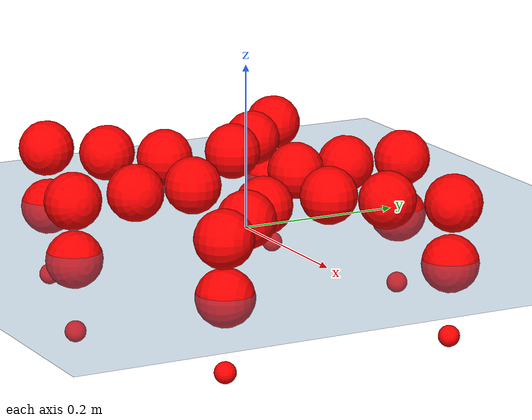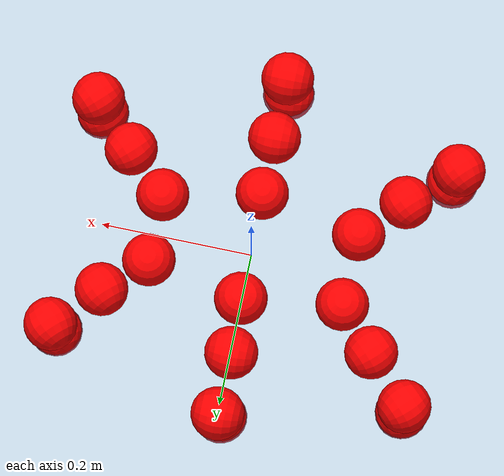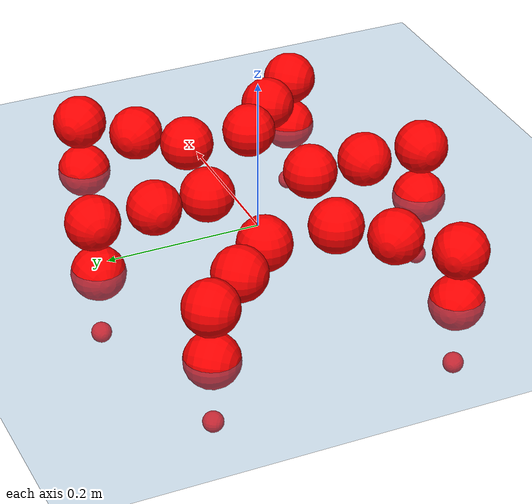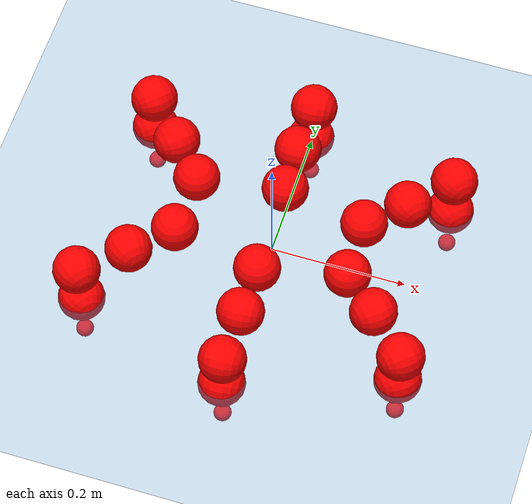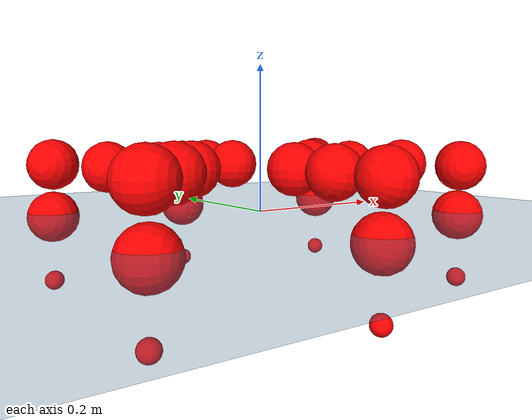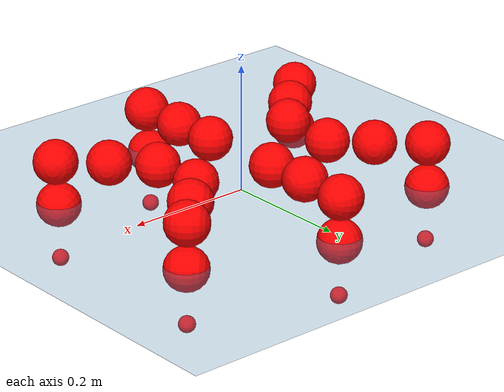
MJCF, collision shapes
<mujoco model="Golem">
  <compiler angle="radian" assetdir="assets" balanceinertia="true" inertiafromgeom="false"/>

  <option timestep="0.005" density="1.2" viscosity="2e-05"/>

  <size nkey="1"/>

  <visual>
    <quality shadowsize="8192"/>
    <map shadowclip="0.5"/>
  </visual>

  <default>
    <default class="/">
      <joint armature="0.01" damping="0.01" frictionloss="0.01"/>
      <geom contype="0" conaffinity="0" group="1" solref="-1000 -80"/>
      <site size="0.01 0.005 0.005" group="5"/>
      <general forcelimited="true" biastype="affine" gainprm="25" biasprm="0 -25 -0.5"/>
      <default class="visual">
        <geom type="mesh" group="2"/>
      </default>
      <default class="collision">
        <geom group="3"/>
      </default>
      <default class="foot">
        <geom size="0.01 0 0" condim="6" group="4" priority="1" solimp="0.015 1 0.01"/>
      </default>
      <default class="reward_collision_sphere">
        <geom group="5" rgba="1 0 0 1"/>
      </default>
    </default>
  </default>

  <asset>
    <texture type="skybox" colorspace="auto" name="//unnamed_texture_0" builtin="gradient" rgb1="0.95 0.95 0.95" rgb2="0.95 0.95 0.95" width="100" height="600"/>
    <texture type="2d" colorspace="auto" name="texplane" builtin="checker" rgb1="0.345 0.575 0.748" rgb2="0.345 0.575 0.748" markrgb="1 1 1" width="512" height="512"/>
    <material name="MatPlane" class="/" texture="texplane" texuniform="true" texrepeat="2 2" specular="0.9"/>
    <mesh name="body" class="/" file="body.stl" scale="0.001 0.001 0.001"/>
    <mesh name="coxa" class="/" file="coxa.stl" scale="0.001 0.001 0.001"/>
    <mesh name="femur" class="/" file="femur.stl" scale="0.001 0.001 0.001"/>
    <mesh name="tibia" class="/" file="tibia.stl" scale="0.001 0.001 0.001"/>
    <mesh name="tarsus" class="/" file="tarsus.stl" scale="0.001 0.001 0.001"/>
  </asset>

  <worldbody>
    <geom name="floor" class="/" size="100 100 0.125" type="plane" group="0" material="MatPlane"/>
    <light name="toplight_shadow" class="/" pos="0 0 5" dir="0.0990148 0.0990148 -0.990148" type="directional" ambient="0.04 0.04 0.04" diffuse="0.55 0.55 0.55" specular="0.12 0.12 0.12"/>
    <light name="toplight_fill" class="/" pos="0 0 5" dir="0.0990148 0.0990148 -0.990148" type="directional" castshadow="false" ambient="0.04 0.04 0.04" diffuse="0.3 0.3 0.3" specular="0.08 0.08 0.08"/>
    <body name="trunk" pos="-0.000897111 -0.000171061 -0.00259678" quat="1 -0.000130785 0.000765747 -0.000373696">
      <inertial pos="0.000351683 0.00240427 -0.00497947" quat="0.999978 -0.00504186 0.0032289 0.00270522" mass="2.4033" diaginertia="0.0037785 0.00216708 0.0116919"/>
      <joint name="//unnamed_joint_0" type="free"/>
      <geom name="//unnamed_geom_1" class="/" pos="0 0 0.0655991" quat="1 0 0 0" type="mesh" rgba="0.9 0.9 0.9 1" mesh="body"/>
      <site name="imu" class="/" pos="0.0984958 0.000235979 0.116441" size="0.00859459"/>
      <camera name="track" class="/" pos="0 -1.47127 0" quat="0.707107 0.707107 0 0" mode="trackcom"/>
      <camera name="ego_camera" class="/" pos="0.106308 0 0.102499" quat="-0.5 -0.5 0.5 0.5"/>
      <body name="coxa_RR" pos="-0.147745 -0.0611382 0.0661328" quat="0.382921 -0.000300746 0.000929789 -0.92378">
        <inertial pos="-0.00244087 -0.00232506 -0.000734663" quat="0.999904 -0.00774277 -0.0103706 0.00502643" mass="0.12879" diaginertia="0.00363221 0.00212286 0.0109728"/>
        <joint name="coxa_joint_RR" class="/" pos="0 0 0" axis="0.00870054 0.000794068 -0.999962" range="-3.1734 3.12109" armature="0.00847547" damping="0.0166" frictionloss="0.00978598"/>
        <geom name="//unnamed_geom_2" class="/" type="mesh" rgba="0.2 0.2 0.2 1" mesh="coxa"/>
        <geom name="//unnamed_geom_3" class="reward_collision_sphere" size="0.0343784" pos="-0.0245326 0 0"/>
        <body name="femur_RR" pos="0.049741 0.00189956 0.000406812" quat="0.500132 -0.500267 0.499794 0.499808">
          <inertial pos="0.000889275 -0.00133079 0.00259179" quat="1 -0.000273737 0.000510314 9.03313e-05" mass="0.126651" diaginertia="0.00365085 0.00214207 0.0109182"/>
          <joint name="femur_joint_RR" class="/" pos="0 0 0" axis="0.00426073 -0.0126614 -0.999911" range="-3.13639 3.12914" armature="0.00786911" damping="0" frictionloss="0.00843562"/>
          <geom name="//unnamed_geom_4" class="/" type="mesh" rgba="0.9 0.9 0.9 1" mesh="femur"/>
          <geom name="//unnamed_geom_5" class="reward_collision_sphere" size="0.0343784"/>
          <body name="tibia_RR" pos="0.000642071 -0.0805311 -0.00207373" quat="-1.82034e-05 1 1.99855e-05 -5.89031e-07">
            <inertial pos="-0.00171436 0.00277662 -0.00261252" quat="0.999905 -0.0130332 -0.00320301 0.00313401" mass="0.125255" diaginertia="0.0034456 0.00210967 0.0109334"/>
            <joint name="tibia_joint_RR" class="/" pos="0 0 0" axis="-0.0046311 0.00070749 0.999989" range="-3.14178 3.08487" armature="0.00851566" damping="0.0137868" frictionloss="0.00813265"/>
            <geom name="//unnamed_geom_6" class="/" type="mesh" rgba="0.2 0.2 0.2 1" mesh="tibia"/>
            <geom name="//unnamed_geom_7" class="reward_collision_sphere" size="0.0343784"/>
            <body name="tarsus_RR" pos="0.0739394 -0.00246175 -0.00175398" quat="0.999999 0.000650551 -0.00094057 0.000743593">
              <inertial pos="0.0498217 -0.0021025 0.0011939" quat="0.499763 0.497343 0.500786 0.502097" mass="0.126369" diaginertia="0.00366833 0.00229406 0.0116613"/>
              <joint name="tarsus_joint_RR" class="/" pos="0 0 0" axis="2.74294e-06 0.000634601 1" range="-3.14467 3.15899" armature="0.0085769" damping="0" frictionloss="0.00901892"/>
              <geom name="//unnamed_geom_8" class="/" type="mesh" rgba="0.9 0.9 0.9 1" mesh="tarsus"/>
              <geom name="foot_1" class="foot" size="0.00882939" pos="0.0915885 0 0" quat="0 -0.707107 0 0.707107"/>
              <geom name="//unnamed_geom_10" class="reward_collision_sphere" size="0.0343784"/>
              <geom name="//unnamed_geom_11" class="reward_collision_sphere" size="0.0128919" pos="0.0879087 0 0"/>
              <site name="foot_1" class="foot" pos="0.0915885 0 0" quat="0 -0.707107 0 0.707107" size="0.00859459"/>
            </body>
          </body>
        </body>
      </body>
      <body name="coxa_RM" pos="0.00181027 -0.0960247 0.0636935" quat="0.707474 0.000676723 0.000298989 -0.706739">
        <inertial pos="0.000133766 -0.0023535 -0.00186146" quat="1 -8.69831e-05 2.61956e-05 -0.000935337" mass="0.121798" diaginertia="0.00340862 0.00200875 0.0110702"/>
        <joint name="coxa_joint_RM" class="/" pos="0 0 0" axis="-0.000471989 -0.0019239 -0.999998" stiffness="0.00568631" range="-3.14354 3.15937" armature="0.00795214" damping="0.0179188" frictionloss="0.009652"/>
        <geom name="//unnamed_geom_12" class="/" type="mesh" rgba="0.2 0.2 0.2 1" mesh="coxa"/>
        <geom name="//unnamed_geom_13" class="reward_collision_sphere" size="0.0343784" pos="-0.0245326 0 0"/>
        <body name="femur_RM" pos="0.0508373 -0.000303004 -0.000146118" quat="0.499679 -0.499511 0.500659 0.500151">
          <inertial pos="0.000540806 -0.00254947 -4.82805e-05" quat="0.999922 -0.00431686 -0.001243 -0.0116508" mass="0.127445" diaginertia="0.0037894 0.00211582 0.0113797"/>
          <joint name="femur_joint_RM" class="/" pos="0 0 0" axis="0.00237096 0.00297028 -0.999993" range="-3.19602 3.19525" armature="0.00963053" damping="0.0267216" frictionloss="0.00869672"/>
          <geom name="//unnamed_geom_14" class="/" type="mesh" rgba="0.9 0.9 0.9 1" mesh="femur"/>
          <geom name="//unnamed_geom_15" class="reward_collision_sphere" size="0.0343784"/>
          <body name="tibia_RM" pos="0.000135366 -0.0805147 -0.000506657" quat="-0.000161365 1 -5.14152e-05 -3.50235e-05">
            <inertial pos="-0.000574761 -0.000327723 -0.00260762" quat="0.999902 0.00629588 0.00886975 0.00884306" mass="0.118431" diaginertia="0.00357169 0.00207546 0.0112845"/>
            <joint name="tibia_joint_RM" class="/" pos="0 0 0" axis="-0.00357148 -0.0013628 0.999993" stiffness="0.00890908" range="-3.19615 3.0835" armature="0.00732167" damping="0" frictionloss="0.00831419"/>
            <geom name="//unnamed_geom_16" class="/" type="mesh" rgba="0.2 0.2 0.2 1" mesh="tibia"/>
            <geom name="//unnamed_geom_17" class="reward_collision_sphere" size="0.0343784"/>
            <body name="tarsus_RM" pos="0.0715563 -0.00196922 0.00277609" quat="1 0.000662536 6.18649e-05 0.000302378">
              <inertial pos="0.0476997 0.000519445 -0.00113429" quat="0.499418 0.50439 0.506983 0.489021" mass="0.126813" diaginertia="0.00367993 0.00214973 0.0113707"/>
              <joint name="tarsus_joint_RM" class="/" pos="0 0 0" axis="0.00294182 -0.00378372 0.999989" range="-3.15591 3.1768" armature="0.00865452" damping="0.000196224" frictionloss="0.00894608"/>
              <geom name="//unnamed_geom_18" class="/" type="mesh" rgba="0.9 0.9 0.9 1" mesh="tarsus"/>
              <geom name="foot_2" class="foot" size="0.00772948" pos="0.0915885 0 0" quat="0 -0.707107 0 0.707107"/>
              <geom name="//unnamed_geom_20" class="reward_collision_sphere" size="0.0343784"/>
              <geom name="//unnamed_geom_21" class="reward_collision_sphere" size="0.0128919" pos="0.0879087 0 0"/>
              <site name="foot_2" class="foot" pos="0.0915885 0 0" quat="0 -0.707107 0 0.707107" size="0.00859459"/>
            </body>
          </body>
        </body>
      </body>
      <body name="coxa_RF" pos="0.144012 -0.0599305 0.0648286" quat="0.924342 0.000445836 0.000255758 -0.381564">
        <inertial pos="0.00262835 -0.00271413 0.0011056" quat="0.999997 0.000838964 0.00144854 0.00183664" mass="0.128918" diaginertia="0.00379279 0.00218393 0.0112625"/>
        <joint name="coxa_joint_RF" class="/" pos="0 0 0" axis="-0.00615605 0.00868907 -0.999943" range="-3.1385 3.15899" armature="0.00842098" damping="0" frictionloss="0.00811454"/>
        <geom name="//unnamed_geom_22" class="/" type="mesh" rgba="0.2 0.2 0.2 1" mesh="coxa"/>
        <geom name="//unnamed_geom_23" class="reward_collision_sphere" size="0.0343784" pos="-0.0245326 0 0"/>
        <body name="femur_RF" pos="0.0482755 0.00155534 0.00188619" quat="0.49948 -0.499959 0.499767 0.500792">
          <inertial pos="-0.00081904 0.0010901 -0.00142135" quat="0.999937 -0.0105455 0.0037746 -0.000291061" mass="0.124213" diaginertia="0.00357952 0.00208242 0.0111768"/>
          <joint name="femur_joint_RF" class="/" pos="0 0 0" axis="0.000156258 -0.000815558 -1" range="-3.10237 3.18082" armature="0.00919625" damping="0.00763787" frictionloss="0.00860088"/>
          <geom name="//unnamed_geom_24" class="/" type="mesh" rgba="0.9 0.9 0.9 1" mesh="femur"/>
          <geom name="//unnamed_geom_25" class="reward_collision_sphere" size="0.0343784"/>
          <body name="tibia_RF" pos="0.00166981 -0.0801661 -0.00110589" quat="0.000398526 1 -0.000150595 -0.000139666">
            <inertial pos="0.00158336 -0.00269755 0.000398318" quat="0.999978 0.00436533 0.00476922 -0.00115311" mass="0.125963" diaginertia="0.00355537 0.00210238 0.0113813"/>
            <joint name="tibia_joint_RF" class="/" pos="0 0 0" axis="-0.000312711 -0.000119116 1" stiffness="0.0082734" range="-3.15386 3.0818" armature="0.00874327" damping="0.00248561" frictionloss="0.0085672"/>
            <geom name="//unnamed_geom_26" class="/" type="mesh" rgba="0.2 0.2 0.2 1" mesh="tibia"/>
            <geom name="//unnamed_geom_27" class="reward_collision_sphere" size="0.0343784"/>
            <body name="tarsus_RF" pos="0.0686578 -0.00293219 -0.0002707" quat="0.999999 0.000914781 -0.000783609 0.000527544">
              <inertial pos="0.048912 -0.000441971 -0.000448985" quat="0.499995 0.499343 0.499916 0.500745" mass="0.12736" diaginertia="0.00368956 0.00221119 0.0112154"/>
              <joint name="tarsus_joint_RF" class="/" pos="0 0 0" axis="-0.00102226 0.00141946 0.999998" range="-3.14656 3.15125" armature="0.0082701" damping="0" frictionloss="0.00905022"/>
              <geom name="//unnamed_geom_28" class="/" type="mesh" rgba="0.9 0.9 0.9 1" mesh="tarsus"/>
              <geom name="foot_3" class="foot" size="0.00854565" pos="0.0915885 0 0" quat="0 -0.707107 0 0.707107"/>
              <geom name="//unnamed_geom_30" class="reward_collision_sphere" size="0.0343784"/>
              <geom name="//unnamed_geom_31" class="reward_collision_sphere" size="0.0128919" pos="0.0879087 0 0"/>
              <site name="foot_3" class="foot" pos="0.0915885 0 0" quat="0 -0.707107 0 0.707107" size="0.00859459"/>
            </body>
          </body>
        </body>
      </body>
      <body name="coxa_LR" pos="-0.145489 0.0661038 0.0637122" quat="0.382679 1.35283e-06 1.08325e-05 0.923881">
        <inertial pos="0.000172057 -0.00117236 -0.00239327" quat="0.999909 0.012037 -0.00432677 -0.00417746" mass="0.121521" diaginertia="0.00354955 0.00216593 0.0111367"/>
        <joint name="coxa_joint_LR" class="/" pos="0 0 0" axis="-0.0056961 -0.00888097 -0.999944" stiffness="0.0117554" range="-3.14907 3.15969" armature="0.0090292" damping="0.01405" frictionloss="0.00979193"/>
        <geom name="//unnamed_geom_32" class="/" type="mesh" rgba="0.2 0.2 0.2 1" mesh="coxa"/>
        <geom name="//unnamed_geom_33" class="reward_collision_sphere" size="0.0343784" pos="-0.0245326 0 0"/>
        <body name="femur_LR" pos="0.0470918 -0.00323222 0.000469244" quat="0.499531 -0.500402 0.499284 0.500781">
          <inertial pos="0.00057715 -0.00159107 -0.00247885" quat="0.999952 0.0062333 0.00475515 0.0058899" mass="0.125831" diaginertia="0.00353665 0.00208456 0.0108743"/>
          <joint name="femur_joint_LR" class="/" pos="0 0 0" axis="0.00227083 -0.0106961 0.99994" range="-3.13583 3.14124" armature="0.00963597" damping="0.015241" frictionloss="0.00905549"/>
          <geom name="//unnamed_geom_34" class="/" type="mesh" rgba="0.9 0.9 0.9 1" mesh="femur"/>
          <geom name="//unnamed_geom_35" class="reward_collision_sphere" size="0.0343784"/>
          <body name="tibia_LR" pos="-0.0026395 -0.0801927 -0.00335186" quat="-0.000357269 1 -4.98778e-05 1.02582e-05">
            <inertial pos="0.00087151 0.00283212 0.000839562" quat="0.999997 -0.000767158 -0.0014096 -0.00194468" mass="0.130575" diaginertia="0.00363591 0.00220001 0.0120378"/>
            <joint name="tibia_joint_LR" class="/" pos="0 0 0" axis="-0.00903859 -0.00208479 -0.999957" stiffness="0.00211014" range="-3.08477 3.10075" armature="0.00942939" damping="0" frictionloss="0.00971971"/>
            <geom name="//unnamed_geom_36" class="/" type="mesh" rgba="0.2 0.2 0.2 1" mesh="tibia"/>
            <geom name="//unnamed_geom_37" class="reward_collision_sphere" size="0.0343784"/>
            <body name="tarsus_LR" pos="0.0712638 0.000419083 -0.000580595" quat="1 3.97989e-05 -1.24101e-05 0.000125634">
              <inertial pos="0.0515415 0.00138696 -0.00166513" quat="0.499952 0.499984 0.50004 0.500024" mass="0.12556" diaginertia="0.00377156 0.00217224 0.0111524"/>
              <joint name="tarsus_joint_LR" class="/" pos="0 0 0" axis="-0.00261806 -0.00490489 -0.999985" range="-3.09268 3.09566" armature="0.00735852" damping="0.018377" frictionloss="0.00868213"/>
              <geom name="//unnamed_geom_38" class="/" type="mesh" rgba="0.9 0.9 0.9 1" mesh="tarsus"/>
              <geom name="foot_4" class="foot" size="0.00858318" pos="0.0915885 0 0" quat="0.707107 0 -0.707107 0"/>
              <geom name="//unnamed_geom_40" class="reward_collision_sphere" size="0.0343784"/>
              <geom name="//unnamed_geom_41" class="reward_collision_sphere" size="0.0128919" pos="0.0879087 0 0"/>
              <site name="foot_4" class="foot" pos="0.0915885 0 0" quat="0.707107 0 -0.707107 0" size="0.00859459"/>
            </body>
          </body>
        </body>
      </body>
      <body name="coxa_LM" pos="-5.1529e-05 0.0928637 0.0653239" quat="0.707102 -3.76955e-05 7.17741e-06 0.707112">
        <inertial pos="0.000219611 -0.00267124 0.00205327" quat="0.999961 -0.00712296 0.00453221 -0.00249697" mass="0.131637" diaginertia="0.00364715 0.00216909 0.0113562"/>
        <joint name="coxa_joint_LM" class="/" pos="0 0 0" axis="0.00643723 0.0119577 -0.999908" range="-3.1291 3.1252" armature="0.00758178" damping="0.017499" frictionloss="0.00866776"/>
        <geom name="//unnamed_geom_42" class="/" type="mesh" rgba="0.2 0.2 0.2 1" mesh="coxa"/>
        <geom name="//unnamed_geom_43" class="reward_collision_sphere" size="0.0343784" pos="-0.0245326 0 0"/>
        <body name="femur_LM" pos="0.0462571 0.00274136 0.000336891" quat="0.500187 -0.49991 0.500061 0.499843">
          <inertial pos="-0.00229498 0.00217897 -0.00256635" quat="0.999997 -0.00119927 0.00223208 -0.000575455" mass="0.124996" diaginertia="0.00352422 0.00214157 0.0109057"/>
          <joint name="femur_joint_LM" class="/" pos="0 0 0" axis="-0.0147902 0.00324267 0.999885" stiffness="0.0105526" range="-3.14468 3.14577" armature="0.00895743" damping="0" frictionloss="0.00979575"/>
          <geom name="//unnamed_geom_44" class="/" type="mesh" rgba="0.9 0.9 0.9 1" mesh="femur"/>
          <geom name="//unnamed_geom_45" class="reward_collision_sphere" size="0.0343784"/>
          <body name="tibia_LM" pos="0.00187896 -0.0790258 -0.000569983" quat="1.32848e-05 1 -3.53889e-05 -5.02028e-05">
            <inertial pos="-0.000693949 -0.000112833 0.00279004" quat="0.999902 0.0104487 0.00464506 0.00805112" mass="0.124865" diaginertia="0.00368333 0.00219816 0.011066"/>
            <joint name="tibia_joint_LM" class="/" pos="0 0 0" axis="-0.0006077 0.000238993 -1" stiffness="0.010377" range="-3.16148 3.1936" armature="0.00816266" damping="0" frictionloss="0.00922836"/>
            <geom name="//unnamed_geom_46" class="/" type="mesh" rgba="0.2 0.2 0.2 1" mesh="tibia"/>
            <geom name="//unnamed_geom_47" class="reward_collision_sphere" size="0.0343784"/>
            <body name="tarsus_LM" pos="0.0714147 -0.00365748 -0.00198374" quat="1 2.97046e-05 1.48996e-05 -4.9161e-07">
              <inertial pos="0.0516349 0.000132035 -0.000382947" quat="0.500172 0.499837 0.500044 0.499946" mass="0.12671" diaginertia="0.00368239 0.00216521 0.0117852"/>
              <joint name="tarsus_joint_LM" class="/" pos="0 0 0" axis="0.00114144 -0.000189572 -0.999999" range="-3.1284 3.13844" armature="0.00881306" damping="0" frictionloss="0.00862948"/>
              <geom name="//unnamed_geom_48" class="/" type="mesh" rgba="0.9 0.9 0.9 1" mesh="tarsus"/>
              <geom name="foot_5" class="foot" size="0.00856808" pos="0.0915885 0 0" quat="0.707107 0 -0.707107 0"/>
              <geom name="//unnamed_geom_50" class="reward_collision_sphere" size="0.0343784"/>
              <geom name="//unnamed_geom_51" class="reward_collision_sphere" size="0.0128919" pos="0.0879087 0 0"/>
              <site name="foot_5" class="foot" pos="0.0915885 0 0" quat="0.707107 0 -0.707107 0" size="0.00859459"/>
            </body>
          </body>
        </body>
      </body>
      <body name="coxa_LF" pos="0.142777 0.0615693 0.06627" quat="0.923835 -0.000356111 1.90512e-05 0.382792">
        <inertial pos="0.00293938 0.000872781 0.000837164" quat="0.999917 0.0125841 -0.00125038 0.00231554" mass="0.126725" diaginertia="0.00374724 0.00214539 0.0113134"/>
        <joint name="coxa_joint_LF" class="/" pos="0 0 0" axis="0.000343536 6.84433e-05 -1" range="-3.16107 3.08378" armature="0.00783251" damping="0.0106222" frictionloss="0.00892711"/>
        <geom name="//unnamed_geom_52" class="/" type="mesh" rgba="0.2 0.2 0.2 1" mesh="coxa"/>
        <geom name="//unnamed_geom_53" class="reward_collision_sphere" size="0.0343784" pos="-0.0245326 0 0"/>
        <body name="femur_LF" pos="0.0466101 -0.000892051 0.000318769" quat="0.500024 -0.500021 0.499977 0.499978">
          <inertial pos="-0.00280897 0.00260119 -0.000472044" quat="0.999982 -0.00539202 0.00164991 -0.00204693" mass="0.126643" diaginertia="0.00353466 0.00213839 0.0113782"/>
          <joint name="femur_joint_LF" class="/" pos="0 0 0" axis="0.00259648 -0.0139689 0.999899" range="-3.19388 3.12801" armature="0.00851439" damping="0" frictionloss="0.00863464"/>
          <geom name="//unnamed_geom_54" class="/" type="mesh" rgba="0.9 0.9 0.9 1" mesh="femur"/>
          <geom name="//unnamed_geom_55" class="reward_collision_sphere" size="0.0343784"/>
          <body name="tibia_LF" pos="-0.00186795 -0.0783129 0.00272912" quat="-0.00124771 0.999999 0.000330625 -0.000286279">
            <inertial pos="-0.00278491 -0.000158718 0.000902858" quat="0.999953 0.00238508 -0.00460846 -0.00813894" mass="0.130958" diaginertia="0.00354244 0.00212823 0.0112442"/>
            <joint name="tibia_joint_LF" class="/" pos="0 0 0" axis="-0.00347115 -0.00236467 -0.999991" stiffness="0.00505846" range="-3.13634 3.16827" armature="0.00853932" damping="0.00735909" frictionloss="0.00900465"/>
            <geom name="//unnamed_geom_56" class="/" type="mesh" rgba="0.2 0.2 0.2 1" mesh="tibia"/>
            <geom name="//unnamed_geom_57" class="reward_collision_sphere" size="0.0343784"/>
            <body name="tarsus_LF" pos="0.0723712 -0.00227125 0.00152277" quat="1 -0.000354444 -0.000330605 0.000145096">
              <inertial pos="0.0471762 -0.000787291 -0.00280261" quat="0.501053 0.499598 0.500679 0.498667" mass="0.118894" diaginertia="0.00352558 0.00209094 0.0110475"/>
              <joint name="tarsus_joint_LF" class="/" pos="0 0 0" axis="0.00045032 -0.00859161 -0.999963" range="-3.13633 3.17795" armature="0.0078704" damping="0.0220919" frictionloss="0.00862703"/>
              <geom name="//unnamed_geom_58" class="/" type="mesh" rgba="0.9 0.9 0.9 1" mesh="tarsus"/>
              <geom name="foot_6" class="foot" size="0.00944461" pos="0.0915885 0 0" quat="0.707107 0 -0.707107 0"/>
              <geom name="//unnamed_geom_60" class="reward_collision_sphere" size="0.0343784"/>
              <geom name="//unnamed_geom_61" class="reward_collision_sphere" size="0.0128919" pos="0.0879087 0 0"/>
              <site name="foot_6" class="foot" pos="0.0915885 0 0" quat="0.707107 0 -0.707107 0" size="0.00859459"/>
            </body>
          </body>
        </body>
      </body>
    </body>
  </worldbody>

  <contact>
    <pair class="/" geom1="floor" geom2="foot_1" name="//unnamed_contact_0"/>
    <pair class="/" geom1="floor" geom2="foot_2" name="//unnamed_contact_1"/>
    <pair class="/" geom1="floor" geom2="foot_3" name="//unnamed_contact_2"/>
    <pair class="/" geom1="floor" geom2="foot_4" name="//unnamed_contact_3"/>
    <pair class="/" geom1="floor" geom2="foot_5" name="//unnamed_contact_4"/>
    <pair class="/" geom1="floor" geom2="foot_6" name="//unnamed_contact_5"/>
  </contact>

  <actuator>
    <general name="coxa_joint_RR" class="/" joint="coxa_joint_RR" forcerange="-6.4346 6.4346" gainprm="20.7051" biasprm="0 -20.7051 -0.463831"/>
    <general name="femur_joint_RR" class="/" joint="femur_joint_RR" forcerange="-6.85521 6.85521" gainprm="20.7051" biasprm="0 -20.7051 -0.463831"/>
    <general name="tibia_joint_RR" class="/" joint="tibia_joint_RR" forcerange="-5.62385 5.62385" gainprm="20.7051" biasprm="0 -20.7051 -0.463831"/>
    <general name="tarsus_joint_RR" class="/" joint="tarsus_joint_RR" forcerange="-6.53266 6.53266" gainprm="20.7051" biasprm="0 -20.7051 -0.463831"/>
    <general name="coxa_joint_RM" class="/" joint="coxa_joint_RM" forcerange="-6.71697 6.71697" gainprm="20.7051" biasprm="0 -20.7051 -0.463831"/>
    <general name="femur_joint_RM" class="/" joint="femur_joint_RM" forcerange="-6.38077 6.38077" gainprm="20.7051" biasprm="0 -20.7051 -0.463831"/>
    <general name="tibia_joint_RM" class="/" joint="tibia_joint_RM" forcerange="-6.56654 6.56654" gainprm="20.7051" biasprm="0 -20.7051 -0.463831"/>
    <general name="tarsus_joint_RM" class="/" joint="tarsus_joint_RM" forcerange="-5.62467 5.62467" gainprm="20.7051" biasprm="0 -20.7051 -0.463831"/>
    <general name="coxa_joint_RF" class="/" joint="coxa_joint_RF" forcerange="-6.93283 6.93283" gainprm="20.7051" biasprm="0 -20.7051 -0.463831"/>
    <general name="femur_joint_RF" class="/" joint="femur_joint_RF" forcerange="-6.29133 6.29133" gainprm="20.7051" biasprm="0 -20.7051 -0.463831"/>
    <general name="tibia_joint_RF" class="/" joint="tibia_joint_RF" forcerange="-6.18483 6.18483" gainprm="20.7051" biasprm="0 -20.7051 -0.463831"/>
    <general name="tarsus_joint_RF" class="/" joint="tarsus_joint_RF" forcerange="-6.30563 6.30563" gainprm="20.7051" biasprm="0 -20.7051 -0.463831"/>
    <general name="coxa_joint_LR" class="/" joint="coxa_joint_LR" forcerange="-6.88751 6.88751" gainprm="20.7051" biasprm="0 -20.7051 -0.463831"/>
    <general name="femur_joint_LR" class="/" joint="femur_joint_LR" forcerange="-6.28882 6.28882" gainprm="20.7051" biasprm="0 -20.7051 -0.463831"/>
    <general name="tibia_joint_LR" class="/" joint="tibia_joint_LR" forcerange="-6.92162 6.92162" gainprm="20.7051" biasprm="0 -20.7051 -0.463831"/>
    <general name="tarsus_joint_LR" class="/" joint="tarsus_joint_LR" forcerange="-6.84994 6.84994" gainprm="20.7051" biasprm="0 -20.7051 -0.463831"/>
    <general name="coxa_joint_LM" class="/" joint="coxa_joint_LM" forcerange="-5.61808 5.61808" gainprm="20.7051" biasprm="0 -20.7051 -0.463831"/>
    <general name="femur_joint_LM" class="/" joint="femur_joint_LM" forcerange="-6.35413 6.35413" gainprm="20.7051" biasprm="0 -20.7051 -0.463831"/>
    <general name="tibia_joint_LM" class="/" joint="tibia_joint_LM" forcerange="-6.90499 6.90499" gainprm="20.7051" biasprm="0 -20.7051 -0.463831"/>
    <general name="tarsus_joint_LM" class="/" joint="tarsus_joint_LM" forcerange="-6.75103 6.75103" gainprm="20.7051" biasprm="0 -20.7051 -0.463831"/>
    <general name="coxa_joint_LF" class="/" joint="coxa_joint_LF" forcerange="-5.635 5.635" gainprm="20.7051" biasprm="0 -20.7051 -0.463831"/>
    <general name="femur_joint_LF" class="/" joint="femur_joint_LF" forcerange="-5.64706 5.64706" gainprm="20.7051" biasprm="0 -20.7051 -0.463831"/>
    <general name="tibia_joint_LF" class="/" joint="tibia_joint_LF" forcerange="-6.16279 6.16279" gainprm="20.7051" biasprm="0 -20.7051 -0.463831"/>
    <general name="tarsus_joint_LF" class="/" joint="tarsus_joint_LF" forcerange="-5.87432 5.87432" gainprm="20.7051" biasprm="0 -20.7051 -0.463831"/>
  </actuator>

  <sensor>
    <gyro site="imu" name="imu_angular_velocity"/>
    <velocimeter site="imu" name="imu_linear_velocity"/>
    <framelinvel objtype="site" objname="foot_1" name="foot_1_global_linear_velocity"/>
    <framelinvel objtype="site" objname="foot_2" name="foot_2_global_linear_velocity"/>
    <framelinvel objtype="site" objname="foot_3" name="foot_3_global_linear_velocity"/>
    <framelinvel objtype="site" objname="foot_4" name="foot_4_global_linear_velocity"/>
    <framelinvel objtype="site" objname="foot_5" name="foot_5_global_linear_velocity"/>
    <framelinvel objtype="site" objname="foot_6" name="foot_6_global_linear_velocity"/>
  </sensor>

  <keyframe>
    <key name="home" qpos="0 0 0.1457 1 0 0 0 0 0 0 0 0 0 0 0 0 0 0 0 0 0 0 0 0 0 0 0 0 0 0 0"/>
  </keyframe>
</mujoco>
